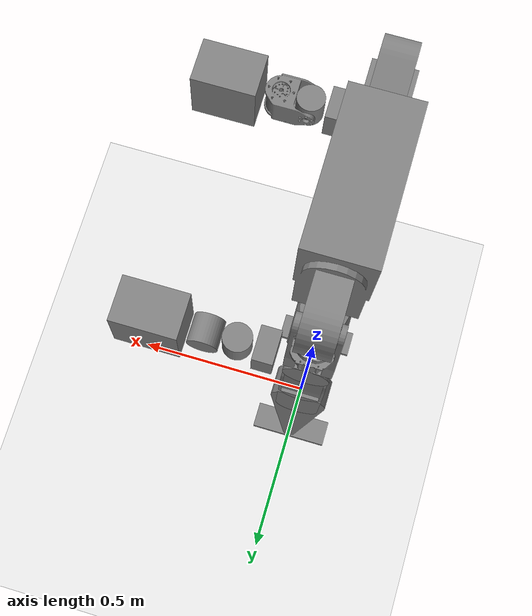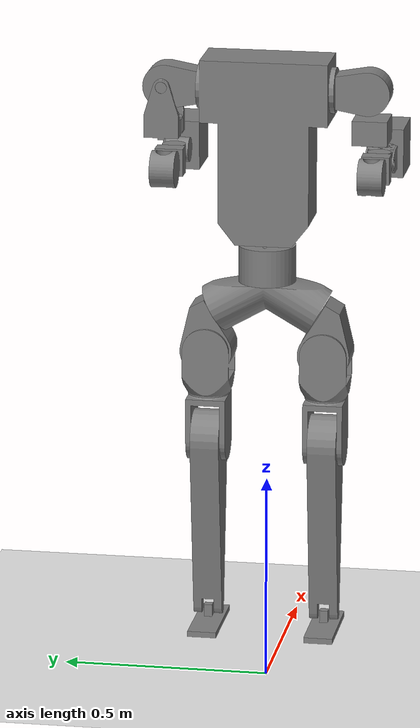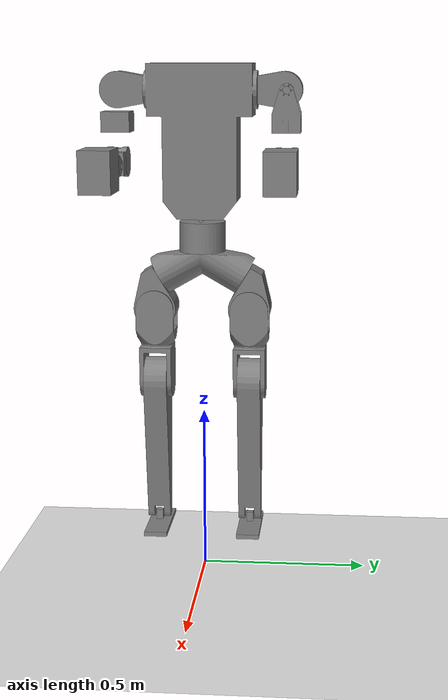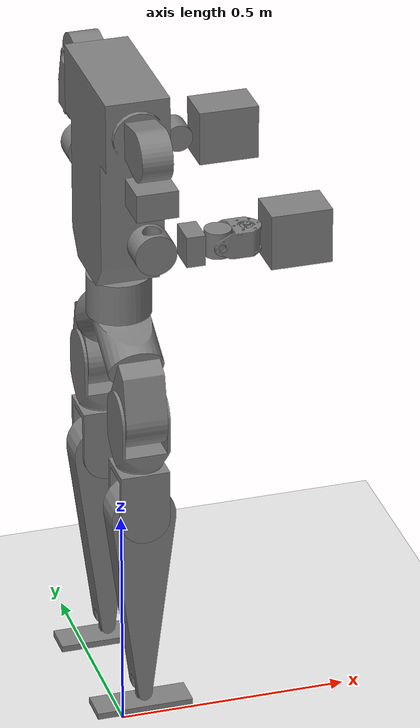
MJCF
<mujoco model="arm new 4">
  <compiler angle="radian" meshdir="../meshes"/>

  <asset>
    <mesh name="pelvis_link" file="pelvis_link.STL"/>
    <mesh name="waist_yaw_link" file="waist_yaw_link.STL"/>
    <mesh name="waist_roll_link" file="waist_roll_link.STL"/>
    <mesh name="torso_link" file="torso_link.STL"/>
    <mesh name="right_shoulder_pitch_link" file="right_shoulder_pitch_link.STL"/>
    <mesh name="right_shoulder_roll_link" file="right_shoulder_roll_link.STL"/>
    <mesh name="right_shoulder_yaw_link" file="right_shoulder_yaw_link.STL"/>
    <mesh name="right_elbow_link" file="right_elbow_link.STL"/>
    <mesh name="right_wrist_roll_link" file="right_wrist_roll_link.STL"/>
    <mesh name="right_wrist_yaw_link" file="right_wrist_yaw_link.STL"/>
    <mesh name="right_wrist_pitch_link" file="right_wrist_pitch_link.STL"/>
    <mesh name="left_shoulder_pitch_link" file="left_shoulder_pitch_link.STL"/>
    <mesh name="left_shoulder_roll_link" file="left_shoulder_roll_link.STL"/>
    <mesh name="left_shoulder_yaw_link" file="left_shoulder_yaw_link.STL"/>
    <mesh name="left_elbow_link" file="left_elbow_link.STL"/>
    <mesh name="left_wrist_roll_link" file="left_wrist_roll_link.STL"/>
    <mesh name="left_wrist_yaw_link" file="left_wrist_yaw_link.STL"/>
    <mesh name="left_wrist_pitch_link" file="left_wrist_pitch_link.STL"/>
    <mesh name="right_hip_pitch_link" file="right_hip_pitch_link.STL"/>
    <mesh name="right_hip_roll_link" file="right_hip_roll_link.STL"/>
    <mesh name="right_hip_yaw_link" file="right_hip_yaw_link.STL"/>
    <mesh name="right_knee_link" file="right_knee_link.STL"/>
    <mesh name="right_ankle_pitch_link" file="right_ankle_pitch_link.STL"/>
    <mesh name="right_ankle_roll_link" file="right_ankle_roll_link.STL"/>
    <mesh name="left_hip_pitch_link" file="left_hip_pitch_link.STL"/>
    <mesh name="left_hip_roll_link" file="left_hip_roll_link.STL"/>
    <mesh name="left_hip_yaw_link" file="left_hip_yaw_link.STL"/>
    <mesh name="left_knee_link" file="left_knee_link.STL"/>
    <mesh name="left_ankle_pitch_link" file="left_ankle_pitch_link.STL"/>
    <mesh name="left_ankle_roll_link" file="left_ankle_roll_link.STL"/>
  </asset>

  <worldbody>
    <light pos="0 0 10" dir="0 0 -1" diffuse="1 1 1"/>
    <geom type="plane" size="5 5 0.1" rgba=".9 .9 .9 1"/>
    <body name="pelvis_link" pos="0 0 1">
      <inertial pos="0 0 -0.0475" mass="1.65504" diaginertia="0.0187 0.0044 0.0193"/>
      <freejoint/>
      <geom type="mesh" mesh="pelvis_link"/>
      <body name="waist_yaw_link">
      <inertial pos="0 0 0.045" mass="2" diaginertia="1e-06 1e-06 1e-06"/>
      <joint name="waist_yaw_joint" pos="0 0 0" axis="0 0 1"/>
      <geom type="mesh" mesh="waist_yaw_link"/>
      <body name="waist_roll_link" pos="0 0 0.096">
        <inertial pos="0 0 0" mass="1" diaginertia="1e-06 1e-06 1e-06"/>
        <joint name="waist_roll_joint" pos="0 0 0" axis="1 0 0"/>
        <geom type="mesh" mesh="waist_roll_link"/>
        <body name="torso_link" pos="0 0 0.006">
          <inertial pos="0 0 0.2484" mass="16.4546" diaginertia="0.337 0.2728 0.1102"/>
          <joint name="torso_joint" pos="0 0 0" axis="0 0 1"/>
          <geom type="mesh" mesh="torso_link"/>
          <body name="right_shoulder_pitch_link" pos="0 -0.1653 0.3727">
            <inertial pos="0 -0.0638 0" quat="0.707107 0.707107 0 0" mass="2.59572" diaginertia="0.0015 0.0012 0.0008"/>
            <joint name="right_shoulder_pitch_joint" pos="0 0 0" axis="0 1 0" range="-2 2"/>
            <geom type="mesh" mesh="right_shoulder_pitch_link"/>
            <body name="right_shoulder_roll_link" pos="0 -0.08475 0">
              <inertial pos="0 0 -0.093" quat="0.5 0.5 -0.5 0.5" mass="0.86543" diaginertia="0.0005 0.0004 0.0004"/>
              <joint name="right_shoulder_roll_joint" pos="0 0 0" axis="1 0 0" range="-3.14 0"/>
              <geom type="mesh" mesh="right_shoulder_roll_link"/>
              <body name="right_shoulder_yaw_link" pos="0 0 -0.123">
                <inertial pos="0 0 -0.087" quat="0.5 0.5 0.5 0.5" mass="0.796124" diaginertia="0.0003 0.0003 0.0002"/>
                <joint name="right_shoulder_yaw_joint" pos="0 0 0" axis="0 0 1" range="-1.5 0.5"/>
                <geom type="mesh" mesh="right_shoulder_yaw_link"/>
                <body name="right_elbow_link" pos="0 0 -0.087">
                  <inertial pos="0.0825 0 0" mass="0.490651" diaginertia="0.0001 0.0001 0.0001"/>
                  <joint name="right_elbow_joint" pos="0 0 0" axis="0 1 0" range="-3 0"/>
                  <geom type="mesh" mesh="right_elbow_link"/>
                  <body name="right_wrist_roll_link" pos="0.1025 0 0">
                    <inertial pos="0.0355 0 0" mass="0.385933" diaginertia="0.0001 0.0001 0.0001"/>
                    <joint name="right_wrist_roll_joint" pos="0 0 0" axis="1 0 0" range="-1 1"/>
                    <geom type="mesh" mesh="right_wrist_roll_link"/>
                    <body name="right_wrist_yaw_link" pos="0.0355 0 0">
                      <inertial pos="0.06 0 0" mass="0.497661" diaginertia="0.0001 0.0001 0.0001"/>
                      <joint name="right_wrist_yaw_joint" pos="0 0 0" axis="0 0 1" range="-1 1"/>
                      <geom type="mesh" mesh="right_wrist_yaw_link"/>
                      <body name="right_wrist_pitch_link" pos="0.06 0 0">
                        <inertial pos="0.105 0 0" quat="0.5 0.5 0.5 0.5" mass="1" diaginertia="0.0037 0.0029 0.0026"/>
                        <joint name="right_wrist_pitch_joint" pos="0 0 0" axis="0 1 0" range="-0.5 0.5"/>
                        <geom type="mesh" mesh="right_wrist_pitch_link"/>
                      </body>
                    </body>
                  </body>
                </body>
              </body>
            </body>
          </body>
          <body name="left_shoulder_pitch_link" pos="0 0.1653 0.3727">
            <inertial pos="0 0.0638 0" quat="0.707107 0.707107 0 0" mass="2.59572" diaginertia="0.0015 0.0012 0.0008"/>
            <joint name="left_shoulder_pitch_joint" pos="0 0 0" axis="0 1 0" range="-2 2"/>
            <geom type="mesh" mesh="left_shoulder_pitch_link"/>
            <body name="left_shoulder_roll_link" pos="0 0.08475 0">
              <inertial pos="0 0 -0.093" quat="0.5 0.5 -0.5 0.5" mass="0.86543" diaginertia="0.0005 0.0004 0.0004"/>
              <joint name="left_shoulder_roll_joint" pos="0 0 0" axis="1 0 0" range="0 3.14"/>
              <geom type="mesh" mesh="left_shoulder_roll_link"/>
              <body name="left_shoulder_yaw_link" pos="0 0 -0.123">
                <inertial pos="0 0 -0.087" quat="0.5 0.5 0.5 0.5" mass="0.796124" diaginertia="0.0003 0.0003 0.0002"/>
                <joint name="left_shoulder_yaw_joint" pos="0 0 0" axis="0 0 1" range="-0.5 1.5"/>
                <geom type="mesh" mesh="left_shoulder_yaw_link"/>
                <body name="left_elbow_link" pos="0 0 -0.087">
                  <inertial pos="0.0825 0 0" mass="0.490651" diaginertia="0.0001 0.0001 0.0001"/>
                  <joint name="left_elbow_joint" pos="0 0 0" axis="0 1 0" range="-3 0"/>
                  <geom type="mesh" mesh="left_elbow_link"/>
                  <body name="left_wrist_roll_link" pos="0.1025 0 0">
                    <inertial pos="0.0355 0 0" mass="0.385933" diaginertia="0.0001 0.0001 0.0001"/>
                    <joint name="left_wrist_roll_joint" pos="0 0 0" axis="1 0 0" range="-1 1"/>
                    <geom type="mesh" mesh="left_wrist_roll_link"/>
                    <body name="left_wrist_yaw_link" pos="0.0355 0 0">
                      <inertial pos="0.06 0 0" mass="0.497661" diaginertia="0.0001 0.0001 0.0001"/>
                      <joint name="left_wrist_yaw_joint" pos="0 0 0" axis="0 0 1" range="-1 1"/>
                      <geom type="mesh" mesh="left_wrist_yaw_link"/>
                      <body name="left_wrist_pitch_link" pos="0.06 0 0">
                        <inertial pos="0.105 0 0" quat="0.5 0.5 0.5 0.5" mass="1" diaginertia="0.0037 0.0029 0.0026"/>
                        <joint name="left_wrist_pitch_joint" pos="0 0 0" axis="0 1 0" range="-0.5 0.5"/>
                        <geom type="mesh" mesh="left_wrist_pitch_link"/>
                      </body>
                    </body>
                  </body>
                </body>
              </body>
            </body>
          </body>
        </body>
      </body>
    </body>
    <body name="right_hip_pitch_link" pos="0 -0.1272 -0.0734" quat="0.965926 0.25882 0 0">
      <inertial pos="0 -0.0556 -0.059" quat="0.984349 -0.176231 0 0" mass="2.5321" diaginertia="0.0044 0.00412195 0.00227805"/>
      <joint name="right_hip_pitch_joint" pos="0 0 0" axis="0 1 0" range="-1 1"/>
      <geom type="mesh" mesh="right_hip_pitch_link"/>
      <body name="right_hip_roll_link" pos="0.045 -0.0628 -0.0779" quat="0.965926 -0.25882 0 0">
        <inertial pos="-0.045 0 -0.0686" quat="0.707107 0 0 0.707107" mass="1.87498" diaginertia="0.0019 0.0017 0.0014"/>
        <joint name="right_hip_roll_joint" pos="0 0 0" axis="1 0 0" range="-0.5 1"/>
        <geom type="mesh" mesh="right_hip_roll_link"/>
        <body name="right_hip_yaw_link" pos="-0.045 0 -0.115">
          <inertial pos="0 0 -0.0625" mass="0.62" diaginertia="0.0021 0.0018 0.0013"/>
          <joint name="right_hip_yaw_joint" pos="0 0 0" axis="0 0 -1" range="-0.5 0.5"/>
          <geom type="mesh" mesh="right_hip_yaw_link"/>
          <body name="right_knee_link" pos="0 -0.035 -0.1137">
            <inertial pos="0 0.035 -0.1346" quat="0.707107 0 0 0.707107" mass="6.285" diaginertia="0.0551 0.0534 0.0042"/>
            <joint name="right_knee_joint" pos="0 0 0" axis="0 1 0" range="-0.5 1"/>
            <geom type="mesh" mesh="right_knee_link"/>
            <body name="right_ankle_pitch_link" pos="0 0.035 -0.4335">
              <inertial pos="0 0 -0.0075" mass="0.808804" diaginertia="1e-06 1e-06 1e-06"/>
              <joint name="right_ankle_pitch_joint" pos="0 0 0" axis="0 1 0" range="-0.5 0.5"/>
              <geom type="mesh" mesh="right_ankle_pitch_link"/>
              <body name="right_ankle_roll_link" pos="0 0 -0.015">
                <inertial pos="0 0 -0.022" quat="0.5 0.5 0.5 0.5" mass="0.808804" diaginertia="0.0008 0.0008 0.0001"/>
                <joint name="right_ankle_roll_joint" pos="0 0 0" axis="1 0 0" range="-0.5 0.5"/>
                <geom type="mesh" mesh="right_ankle_roll_link"/>
              </body>
            </body>
          </body>
        </body>
      </body>
    </body>
    <body name="left_hip_pitch_link" pos="0 0.1272 -0.0734" quat="0.965926 -0.25882 0 0">
      <inertial pos="0 0.0556 -0.059" quat="0.984349 0.176231 0 0" mass="2.5321" diaginertia="0.0044 0.00412195 0.00227805"/>
      <joint name="left_hip_pitch_joint" pos="0 0 0" axis="0 1 0" range="-1 1"/>
      <geom type="mesh" mesh="left_hip_pitch_link"/>
      <body name="left_hip_roll_link" pos="0.045 0.0628 -0.0779" quat="0.965926 0.25882 0 0">
        <inertial pos="-0.045 0 -0.0686" quat="0.707107 0 0 0.707107" mass="1.87498" diaginertia="0.0019 0.0017 0.0014"/>
        <joint name="left_hip_roll_joint" pos="0 0 0" axis="1 0 0" range="-0.5 1"/>
        <geom type="mesh" mesh="left_hip_roll_link"/>
        <body name="left_hip_yaw_link" pos="-0.045 0 -0.115">
          <inertial pos="0 0 -0.0625" mass="0.62" diaginertia="0.0021 0.0018 0.0013"/>
          <joint name="left_hip_yaw_joint" pos="0 0 0" axis="0 0 -1" range="-0.5 0.5"/>
          <geom type="mesh" mesh="left_hip_yaw_link"/>
          <body name="left_knee_link" pos="0 0.035 -0.1137">
            <inertial pos="0 -0.035 -0.1347" quat="0.707107 0 0 0.707107" mass="6.285" diaginertia="0.0551 0.0535 0.0042"/>
            <joint name="left_knee_joint" pos="0 0 0" axis="0 1 0" range="-0.5 1"/>
            <geom type="mesh" mesh="left_knee_link"/>
            <body name="left_ankle_pitch_link" pos="0 -0.035 -0.4335">
              <inertial pos="0 0 -0.0075" mass="0.808804" diaginertia="1e-06 1e-06 1e-06"/>
              <joint name="left_ankle_pitch_joint" pos="0 0 0" axis="0 1 0" range="-0.5 0.5"/>
              <geom type="mesh" mesh="left_ankle_pitch_link"/>
              <body name="left_ankle_roll_link" pos="0 0 -0.015">
                <inertial pos="0 0 -0.022" quat="0.5 0.5 0.5 0.5" mass="0.808804" diaginertia="0.0008 0.0008 0.0001"/>
                <joint name="left_ankle_roll_joint" pos="0 0 0" axis="1 0 0" range="-0.5 0.5"/>
                <geom type="mesh" mesh="left_ankle_roll_link"/>
              </body>
            </body>
          </body>
        </body>
      </body>
    </body>
    </body>
  </worldbody>
  <actuator>
    <position name="waist_yaw_joint_servo" joint="waist_yaw_joint" kp="50" />
    <position name="waist_roll_joint_servo" joint="waist_roll_joint" kp="50" />
    <position name="torso_joint_servo" joint="torso_joint" kp="50" />
    <position name="right_shoulder_pitch_joint_servo" joint="right_shoulder_pitch_joint" kp="50" />
    <position name="right_shoulder_roll_joint_servo" joint="right_shoulder_roll_joint" kp="50" />
    <position name="right_shoulder_yaw_joint_servo" joint="right_shoulder_yaw_joint" kp="50" />
    <position name="right_elbow_joint_servo" joint="right_elbow_joint" kp="50" />
    <position name="right_wrist_roll_joint_servo" joint="right_wrist_roll_joint" kp="50" />
    <position name="right_wrist_yaw_joint_servo" joint="right_wrist_yaw_joint" kp="50" />
    <position name="right_wrist_pitch_joint_servo" joint="right_wrist_pitch_joint" kp="50" />
    <position name="left_shoulder_pitch_joint_servo" joint="left_shoulder_pitch_joint" kp="50" />
    <position name="left_shoulder_roll_joint_servo" joint="left_shoulder_roll_joint" kp="50" />
    <position name="left_shoulder_yaw_joint_servo" joint="left_shoulder_yaw_joint" kp="50" />
    <position name="left_elbow_joint_servo" joint="left_elbow_joint" kp="50" />
    <position name="left_wrist_roll_joint_servo" joint="left_wrist_roll_joint" kp="50" />
    <position name="left_wrist_yaw_joint_servo" joint="left_wrist_yaw_joint" kp="50" />
    <position name="left_wrist_pitch_joint_servo" joint="left_wrist_pitch_joint" kp="50" />
    <position name="left_hip_pitch_joint_servo" joint="left_hip_pitch_joint" kp="50" />
    <position name="right_hip_pitch_joint_servo" joint="right_hip_pitch_joint" kp="50" />
    <position name="left_hip_roll_joint_servo" joint="left_hip_roll_joint" kp="50" />
    <position name="right_hip_roll_joint_servo" joint="right_hip_roll_joint" kp="50" />
    <position name="left_hip_yaw_joint_servo" joint="left_hip_yaw_joint" kp="50" />
    <position name="right_hip_yaw_joint_servo" joint="right_hip_yaw_joint" kp="50" />
    <position name="left_knee_joint_servo" joint="left_knee_joint" kp="50" />
    <position name="right_knee_joint_servo" joint="right_knee_joint" kp="50" />
    <position name="left_ankle_pitch_joint_servo" joint="left_ankle_pitch_joint" kp="50" />
    <position name="right_ankle_pitch_joint_servo" joint="right_ankle_pitch_joint" kp="50" />
    <position name="left_ankle_roll_joint_servo" joint="left_ankle_roll_joint" kp="50" />
    <position name="right_ankle_roll_joint_servo" joint="right_ankle_roll_joint" kp="50" />
  </actuator>
  <keyframe>
    <key name="home"
      qpos="
    0 0 1
    1 0 0 0
    0 0 0
    0 0 0 0 0 0 0
    0 0 0 0 0 0 0
    -0.2 0 0 0.35 0 0
    -0.2 0 0 0.35 0 0"/>
  </keyframe>
</mujoco>
